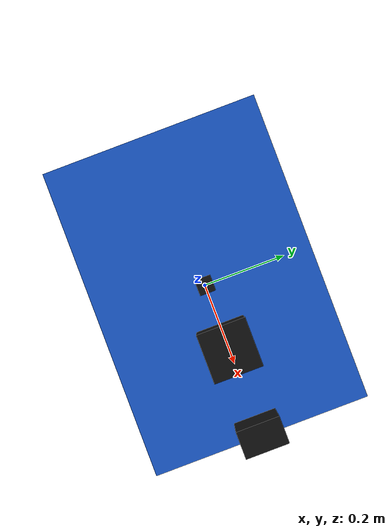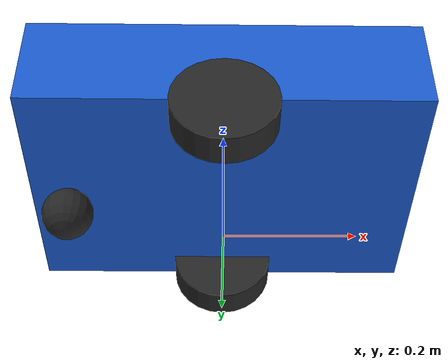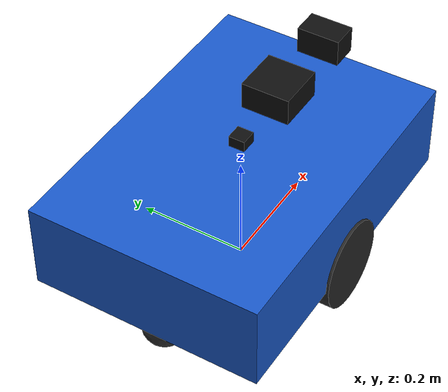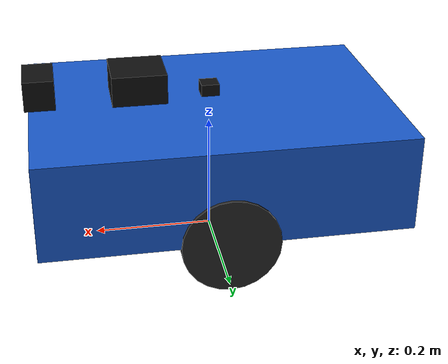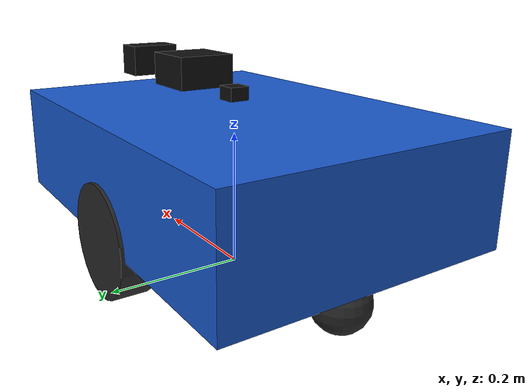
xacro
<?xml version="1.0"?>
<robot name="agv" xmlns:xacro="http://www.ros.org/wiki/xacro">
  <xacro:include filename="$(find agv_description)/urdf/common.xacro"/>
  <xacro:include filename="$(find agv_description)/urdf/wheels.xacro"/>
  <xacro:include filename="$(find agv_description)/urdf/sensors.xacro"/>

  <xacro:property name="body_length" value="0.60"/>
  <xacro:property name="body_width" value="0.42"/>
  <xacro:property name="body_height" value="0.16"/>
  <xacro:property name="wheel_radius" value="0.08"/>
  <xacro:property name="wheel_width" value="0.05"/>
  <xacro:property name="wheel_base" value="0.38"/>

  <link name="base_footprint"/>
  <link name="base_link">
    <visual><origin xyz="0 0 ${wheel_radius + body_height/2}"/><geometry><box size="${body_length} ${body_width} ${body_height}"/></geometry><material name="agv_blue"/></visual>
    <collision><origin xyz="0 0 ${wheel_radius + body_height/2}"/><geometry><box size="${body_length} ${body_width} ${body_height}"/></geometry></collision>
    <xacro:box_inertia mass="12.0" x="${body_length}" y="${body_width}" z="${body_height}"/>
  </link>
  <joint name="base_footprint_joint" type="fixed"><parent link="base_footprint"/><child link="base_link"/></joint>

  <xacro:agv_wheel side="left" y="${wheel_base/2}" radius="${wheel_radius}" width="${wheel_width}"/>
  <xacro:agv_wheel side="right" y="${-wheel_base/2}" radius="${wheel_radius}" width="${wheel_width}"/>

  <link name="caster_link"><visual><geometry><sphere radius="0.04"/></geometry><material name="wheel_gray"/></visual><collision><geometry><sphere radius="0.04"/></geometry></collision><inertial><mass value="0.15"/><inertia ixx="0.0001" ixy="0" ixz="0" iyy="0.0001" iyz="0" izz="0.0001"/></inertial></link>
  <joint name="caster_joint" type="fixed"><parent link="base_link"/><child link="caster_link"/><origin xyz="-0.24 0 0.04"/></joint>

  <xacro:fixed_sensor name="lidar" parent="base_link" xyz="0.12 0 ${wheel_radius + body_height + 0.04}" rpy="0 0 0" size="0.09 0.09 0.05"/>
  <xacro:fixed_sensor name="camera" parent="base_link" xyz="0.28 0 ${wheel_radius + body_height + 0.04}" rpy="0 0 0" size="0.05 0.08 0.05"/>
  <link name="camera_optical_frame"/>
  <joint name="camera_optical_joint" type="fixed"><parent link="camera_link"/><child link="camera_optical_frame"/><origin xyz="0 0 0" rpy="-1.5708 0 -1.5708"/></joint>
  <xacro:fixed_sensor name="imu" parent="base_link" xyz="0 0 ${wheel_radius + body_height + 0.02}" rpy="0 0 0" size="0.03 0.03 0.02"/>
</robot>

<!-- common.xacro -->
<robot xmlns:xacro="http://www.ros.org/wiki/xacro">
  <material name="agv_blue"><color rgba="0.10 0.35 0.80 1.0"/></material>
  <material name="sensor_black"><color rgba="0.06 0.06 0.06 1.0"/></material>
  <material name="wheel_gray"><color rgba="0.15 0.15 0.15 1.0"/></material>

  <xacro:macro name="box_inertia" params="mass x y z">
    <inertial>
      <mass value="${mass}"/>
      <origin xyz="0 0 0" rpy="0 0 0"/>
      <inertia ixx="${mass * (y*y + z*z) / 12}" ixy="0" ixz="0"
               iyy="${mass * (x*x + z*z) / 12}" iyz="0"
               izz="${mass * (x*x + y*y) / 12}"/>
    </inertial>
  </xacro:macro>

  <xacro:macro name="cylinder_inertia" params="mass radius length">
    <inertial>
      <mass value="${mass}"/>
      <origin xyz="0 0 0" rpy="0 0 0"/>
      <inertia ixx="${mass * (3*radius*radius + length*length) / 12}" ixy="0" ixz="0"
               iyy="${mass * (3*radius*radius + length*length) / 12}" iyz="0"
               izz="${mass * radius*radius / 2}"/>
    </inertial>
  </xacro:macro>
</robot>

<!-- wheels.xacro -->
<robot xmlns:xacro="http://www.ros.org/wiki/xacro">
  <xacro:macro name="agv_wheel" params="side y radius width">
    <link name="${side}_wheel_link">
      <visual><origin xyz="0 0 0" rpy="1.5708 0 0"/><geometry><cylinder radius="${radius}" length="${width}"/></geometry><material name="wheel_gray"/></visual>
      <collision><origin xyz="0 0 0" rpy="1.5708 0 0"/><geometry><cylinder radius="${radius}" length="${width}"/></geometry></collision>
      <xacro:cylinder_inertia mass="0.6" radius="${radius}" length="${width}"/>
    </link>
    <joint name="${side}_wheel_joint" type="continuous">
      <parent link="base_link"/><child link="${side}_wheel_link"/>
      <origin xyz="0 ${y} ${radius}" rpy="0 0 0"/><axis xyz="0 1 0"/>
    </joint>
  </xacro:macro>
</robot>

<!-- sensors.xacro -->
<robot xmlns:xacro="http://www.ros.org/wiki/xacro">
  <xacro:macro name="fixed_sensor" params="name parent xyz rpy size">
    <link name="${name}_link">
      <visual><geometry><box size="${size}"/></geometry><material name="sensor_black"/></visual>
      <collision><geometry><box size="${size}"/></geometry></collision>
      <inertial><mass value="0.05"/><inertia ixx="0.0001" ixy="0" ixz="0" iyy="0.0001" iyz="0" izz="0.0001"/></inertial>
    </link>
    <joint name="${name}_joint" type="fixed"><parent link="${parent}"/><child link="${name}_link"/><origin xyz="${xyz}" rpy="${rpy}"/></joint>
  </xacro:macro>
</robot>
